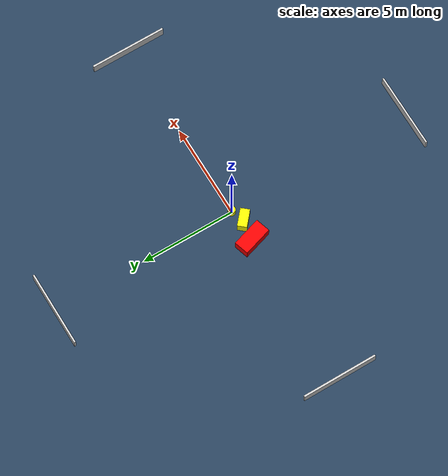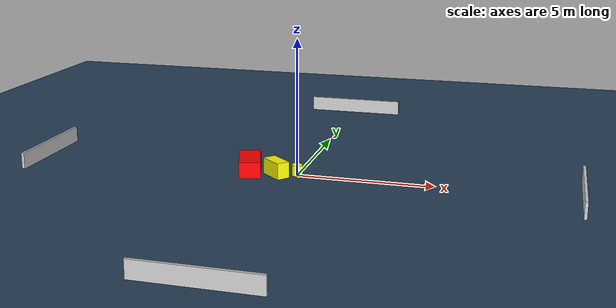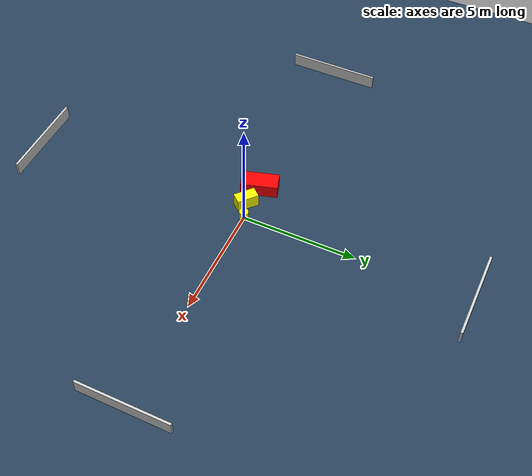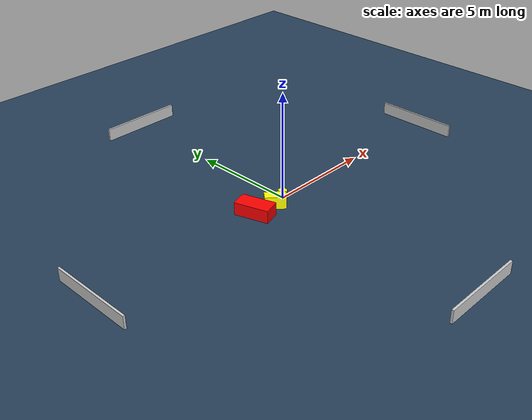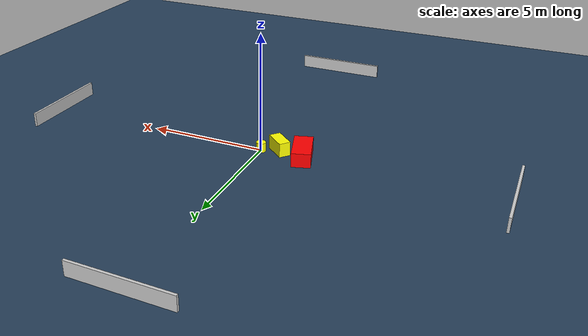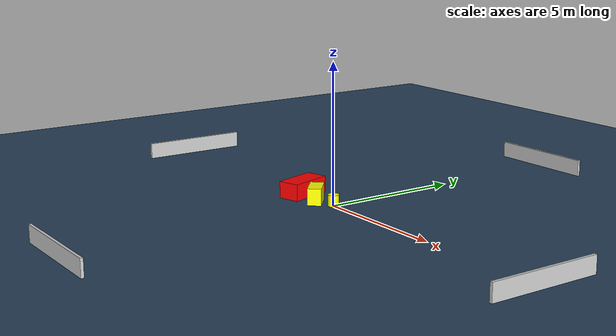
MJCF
<?xml version="1.0" ?>
<mujoco model="generated_environment">
  <option timestep="0.01" integrator="RK4" cone="elliptic"/>
  <default>
    <geom density="1"/>
  </default>
  <asset>
    <texture builtin="gradient" height="3072" name="skybox" rgb1="0.3 0.5 0.7" rgb2="0 0 0" type="skybox" width="512"/>
    <texture builtin="checker" height="300" name="groundplane" rgb1="0.2 0.3 0.4" rgb2="0.1 0.2 0.3" type="2d" width="300"/>
    <material name="groundplane" reflectance="0.2" texrepeat="5 5" texture="groundplane"/>
  </asset>
  <worldbody>
    <light dir="0 0 -1" directional="true" pos="0 0 1.5"/>
    <geom condim="3" friction="0.5 0.005 0.001" material="groundplane" name="floor" pos="0 0 0" size="0 0 0.05" type="plane"/>
    <body name="walls">
      <geom name="wall_1" condim="4" pos="-10.0 0.0 0.3" rgba="0.800000011920929 0.800000011920929 0.800000011920929 1.0" size="0.05 2.0 0.3" type="box"/>
      <geom name="wall_2" condim="4" pos="10.0 0.0 0.3" rgba="0.800000011920929 0.800000011920929 0.800000011920929 1.0" size="0.05 2.0 0.3" type="box"/>
      <geom name="wall_3" condim="4" pos="0.0 -10.0 0.3" rgba="0.800000011920929 0.800000011920929 0.800000011920929 1.0" size="2.0 0.05 0.3" type="box"/>
      <geom name="wall_4" condim="4" pos="0.0 10.0 0.3" rgba="0.800000011920929 0.800000011920929 0.800000011920929 1.0" size="2.0 0.05 0.3" type="box"/>
    </body>
    <body name="robot">
      <joint name="joint_x" type="slide" pos="0 0 0" axis="1 0 0"/>
      <joint name="joint_y" type="slide" pos="0 0 0" axis="0 1 0"/>
      <geom name="robot" type="cylinder" pos="0.0 0.0 0.2" size="0.2 0.2 0.0" mass="5.0" friction="1.0 0.005 0.0001" condim="4" rgba="1.0 1.0 0.0 1.0"/>
    </body>
    <body name="obstacle_1_movable">
      <geom name="obstacle_1_movable" condim="4" pos="-0.7229830633036844 -0.24287684250717276 0.3" euler="0 0 319.22645263730794" friction="0.0 0.005 0.001" rgba="1.0 1.0 0.0 1.0" size="0.4762300945916544 0.24438790746284392 0.3" type="box" mass="0.1"/>
      <joint type="free"/>
    </body>
    <body name="obstacle_2_static">
      <geom name="obstacle_2_static" condim="4" pos="-1.7773575583977648 -0.08510509631151102 0.3" euler="0 0 17.218619436629197" friction="0.0 0.005 0.001" rgba="1.0 0.0 0.0 1.0" size="0.3927231435811023 0.7991521009014997 0.3" type="box"/>
    </body>
  </worldbody>
  <actuator>
    <motor name="actuator_x" joint="joint_x" gear="1" ctrlrange="-1 1"/>
    <motor name="actuator_y" joint="joint_y" gear="1" ctrlrange="-1 1"/>
  </actuator>
</mujoco>
